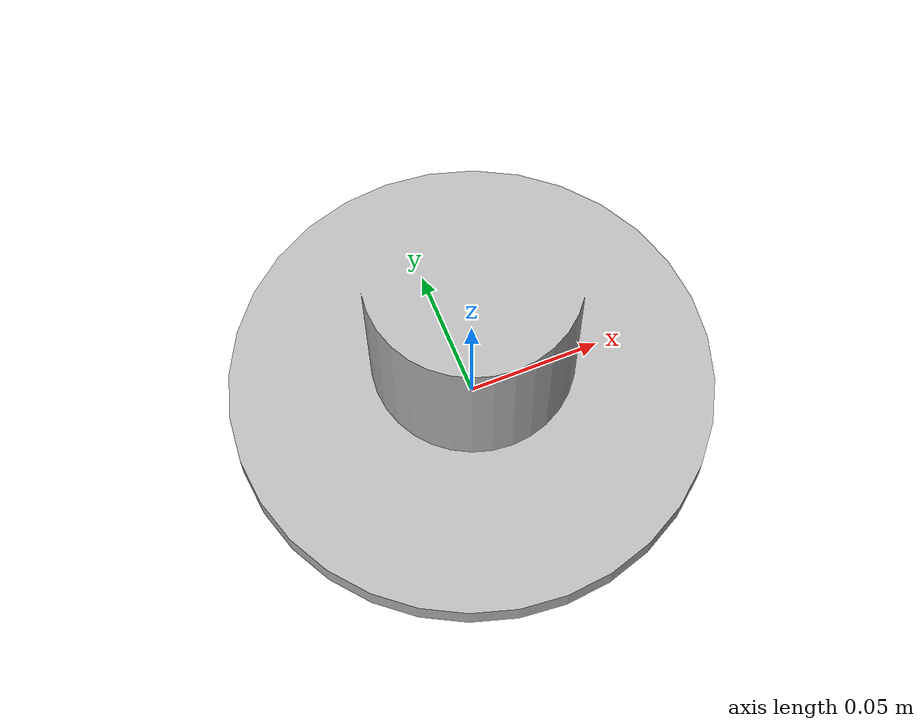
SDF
<?xml version="1.0" ?>
<sdf version='1.4'>
  <model name="cup_cake">
      <static>0</static>
      <link name='link'>
        <inertial>
          <mass>0.52</mass>
          <inertia>
            <ixx>0.00120289</ixx>
            <ixy>0.000000</ixy>
            <ixz>0.000000</ixz>
            <iyy>0.00120289</iyy>
            <iyz>0.000000</iyz>
            <izz>0.0018785</izz>
          </inertia>
        </inertial>
        <collision name='collision'>
          <geometry>
            <mesh>
              <uri>model://cup_cake/meshes/cupcake_v2_collision.stl</uri>
              <scale>1 1 1</scale>
            </mesh>
          </geometry>
          <surface>
            <friction>
              <ode>
                <mu>30.0</mu>
                <mu2>30.0</mu2>
              </ode>
            </friction>
            <contact>
              <ode>
                <kp>1000000.0</kp>
                <kd>1000000.0</kd>
                <max_vel>1.0</max_vel>
                <min_depth>0.002</min_depth>
              </ode>
            </contact>
          </surface>
        </collision>
        <visual name='visual'>
          <geometry>
            <mesh>
              <uri>model://cup_cake/meshes/cup_cake_v3.dae</uri>
              <scale>1 1 1</scale>
            </mesh>
          </geometry>

        </visual>
        <velocity_decay>
          <linear>0.000000</linear>
          <angular>0.000000</angular>
        </velocity_decay>
        <self_collide>0</self_collide>
        <kinematic>0</kinematic>
        <gravity>1</gravity>
      </link>
  </model>
</sdf>
